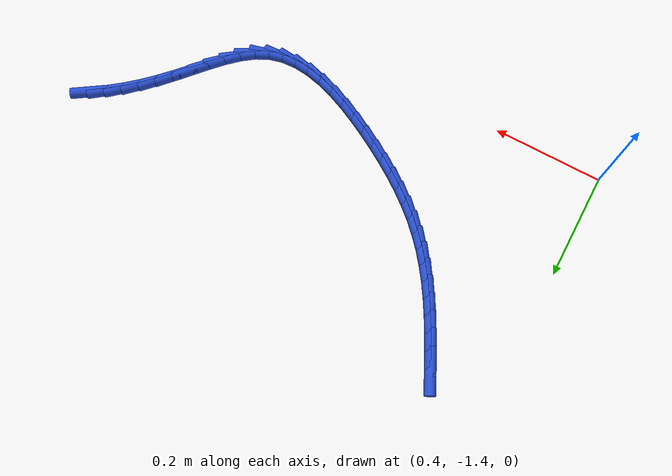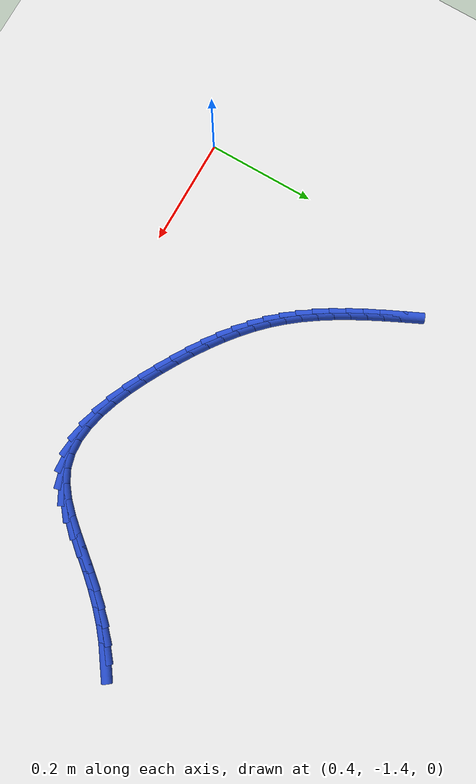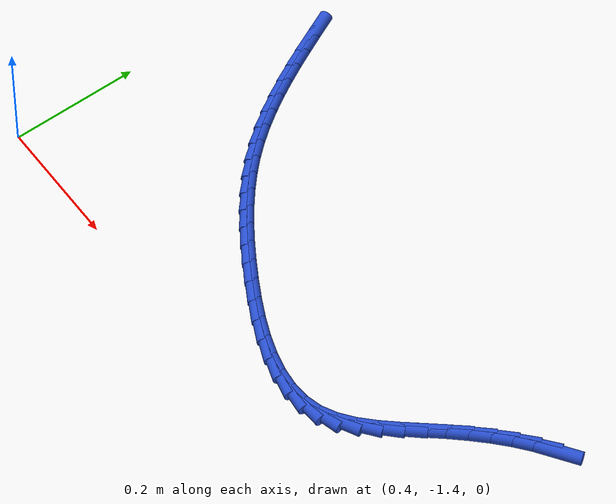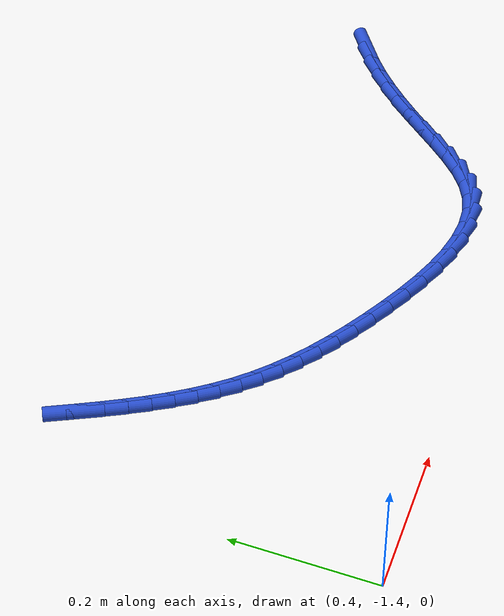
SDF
<sdf version="1.6">
 <world name="default">
  <model name="ground_plane">
   <static>1</static>
   <link name="link">
    <collision name="collision">
     <geometry><plane><normal>0 0 1</normal><size>100 100</size></plane></geometry>
     <surface><friction><ode><mu>100</mu><mu2>50</mu2></ode></friction></surface>
    </collision>
    <visual name="visual">
     <cast_shadows>0</cast_shadows>
     <geometry><plane><normal>0 0 1</normal><size>100 100</size></plane></geometry>
     <material>
      <script><uri>file://media/materials/scripts/gazebo.material</uri><name>Gazebo/WhiteGlow</name></script>
     </material>
    </visual>
   </link>
  </model>
  <model name="line">
   <link name="link_209">
    <pose>1.2861590189860541 -1.0997589710834181 0.01 0 1.57 0.6084185661829347</pose>
    <collision name="collision">
     <geometry><cylinder><radius>0.01</radius><length>0.08</length></cylinder></geometry>
    </collision>
    <visual name="visual">
     <material>
      <script><name>Gazebo/Blue</name><uri>file://media/materials/scripts/gazebo.material</uri></script>
     </material>
     <geometry><cylinder><radius>0.01</radius><length>0.08</length></cylinder></geometry>
    </visual>
   </link>
   <link name="link_210">
    <pose>1.2612996912087948 -1.1170751712493021 0.01 0 1.57 0.6839154844562785</pose>
    <collision name="collision">
     <geometry><cylinder><radius>0.01</radius><length>0.08</length></cylinder></geometry>
    </collision>
    <visual name="visual">
     <material>
      <script><name>Gazebo/Blue</name><uri>file://media/materials/scripts/gazebo.material</uri></script>
     </material>
     <geometry><cylinder><radius>0.01</radius><length>0.08</length></cylinder></geometry>
    </visual>
   </link>
   <link name="link_211">
    <pose>1.237512090963625 -1.136465822181961 0.01 0 1.57 0.7475414297380552</pose>
    <collision name="collision">
     <geometry><cylinder><radius>0.01</radius><length>0.08</length></cylinder></geometry>
    </collision>
    <visual name="visual">
     <material>
      <script><name>Gazebo/Blue</name><uri>file://media/materials/scripts/gazebo.material</uri></script>
     </material>
     <geometry><cylinder><radius>0.01</radius><length>0.08</length></cylinder></geometry>
    </visual>
   </link>
   <link name="link_212">
    <pose>1.214667768669167 -1.1576428436274608 0.01 0 1.57 0.7998434305124271</pose>
    <collision name="collision">
     <geometry><cylinder><radius>0.01</radius><length>0.08</length></cylinder></geometry>
    </collision>
    <visual name="visual">
     <material>
      <script><name>Gazebo/Blue</name><uri>file://media/materials/scripts/gazebo.material</uri></script>
     </material>
     <geometry><cylinder><radius>0.01</radius><length>0.08</length></cylinder></geometry>
    </visual>
   </link>
   <link name="link_213">
    <pose>1.1926382747440418 -1.180318155331868 0.01 0 1.57 0.8415513875856154</pose>
    <collision name="collision">
     <geometry><cylinder><radius>0.01</radius><length>0.08</length></cylinder></geometry>
    </collision>
    <visual name="visual">
     <material>
      <script><name>Gazebo/Blue</name><uri>file://media/materials/scripts/gazebo.material</uri></script>
     </material>
     <geometry><cylinder><radius>0.01</radius><length>0.08</length></cylinder></geometry>
    </visual>
   </link>
   <link name="link_214">
    <pose>1.1712951596068724 -1.2042036770412494 0.01 0 1.57 0.872230084746882</pose>
    <collision name="collision">
     <geometry><cylinder><radius>0.01</radius><length>0.08</length></cylinder></geometry>
    </collision>
    <visual name="visual">
     <material>
      <script><name>Gazebo/Blue</name><uri>file://media/materials/scripts/gazebo.material</uri></script>
     </material>
     <geometry><cylinder><radius>0.01</radius><length>0.08</length></cylinder></geometry>
    </visual>
   </link>
   <link name="link_215">
    <pose>1.1504953335620145 -1.2289700803911334 0.01 0 1.57 0.8778581682443698</pose>
    <collision name="collision">
     <geometry><cylinder><radius>0.01</radius><length>0.08</length></cylinder></geometry>
    </collision>
    <visual name="visual">
     <material>
      <script><name>Gazebo/Blue</name><uri>file://media/materials/scripts/gazebo.material</uri></script>
     </material>
     <geometry><cylinder><radius>0.01</radius><length>0.08</length></cylinder></geometry>
    </visual>
   </link>
   <link name="link_216">
    <pose>1.129909572385254 -1.2537636082134094 0.01 0 1.57 0.8478102952638523</pose>
    <collision name="collision">
     <geometry><cylinder><radius>0.01</radius><length>0.08</length></cylinder></geometry>
    </collision>
    <visual name="visual">
     <material>
      <script><name>Gazebo/Blue</name><uri>file://media/materials/scripts/gazebo.material</uri></script>
     </material>
     <geometry><cylinder><radius>0.01</radius><length>0.08</length></cylinder></geometry>
    </visual>
   </link>
   <link name="link_217">
    <pose>1.1090805337630742 -1.2773695342236382 0.01 0 1.57 0.7775416072455353</pose>
    <collision name="collision">
     <geometry><cylinder><radius>0.01</radius><length>0.08</length></cylinder></geometry>
    </collision>
    <visual name="visual">
     <material>
      <script><name>Gazebo/Blue</name><uri>file://media/materials/scripts/gazebo.material</uri></script>
     </material>
     <geometry><cylinder><radius>0.01</radius><length>0.08</length></cylinder></geometry>
    </visual>
   </link>
   <link name="link_218">
    <pose>1.0875483484255912 -1.2985660125088194 0.01 0 1.57 0.6586601776196622</pose>
    <collision name="collision">
     <geometry><cylinder><radius>0.01</radius><length>0.08</length></cylinder></geometry>
    </collision>
    <visual name="visual">
     <material>
      <script><name>Gazebo/Blue</name><uri>file://media/materials/scripts/gazebo.material</uri></script>
     </material>
     <geometry><cylinder><radius>0.01</radius><length>0.08</length></cylinder></geometry>
    </visual>
   </link>
   <link name="link_219">
    <pose>1.0648531471029192 -1.3161311971559517 0.01 0 1.57 0.4816758764515827</pose>
    <collision name="collision">
     <geometry><cylinder><radius>0.01</radius><length>0.08</length></cylinder></geometry>
    </collision>
    <visual name="visual">
     <material>
      <script><name>Gazebo/Blue</name><uri>file://media/materials/scripts/gazebo.material</uri></script>
     </material>
     <geometry><cylinder><radius>0.01</radius><length>0.08</length></cylinder></geometry>
    </visual>
   </link>
   <link name="link_220">
    <pose>1.0405350822664654 -1.328843290580633 0.01 0 1.57 0.2610140699693632</pose>
    <collision name="collision">
     <geometry><cylinder><radius>0.01</radius><length>0.08</length></cylinder></geometry>
    </collision>
    <visual name="visual">
     <material>
      <script><name>Gazebo/Blue</name><uri>file://media/materials/scripts/gazebo.material</uri></script>
     </material>
     <geometry><cylinder><radius>0.01</radius><length>0.08</length></cylinder></geometry>
    </visual>
   </link>
   <link name="link_221">
    <pose>1.0143008303751369 -1.3358506604308986 0.01 0 1.57 0.06137285924244758</pose>
    <collision name="collision">
     <geometry><cylinder><radius>0.01</radius><length>0.08</length></cylinder></geometry>
    </collision>
    <visual name="visual">
     <material>
      <script><name>Gazebo/Blue</name><uri>file://media/materials/scripts/gazebo.material</uri></script>
     </material>
     <geometry><cylinder><radius>0.01</radius><length>0.08</length></cylinder></geometry>
    </visual>
   </link>
   <link name="link_222">
    <pose>0.9864247827164533 -1.3375636444447818 0.01 0 1.57 -0.09933247410590293</pose>
    <collision name="collision">
     <geometry><cylinder><radius>0.01</radius><length>0.08</length></cylinder></geometry>
    </collision>
    <visual name="visual">
     <material>
      <script><name>Gazebo/Blue</name><uri>file://media/materials/scripts/gazebo.material</uri></script>
     </material>
     <geometry><cylinder><radius>0.01</radius><length>0.08</length></cylinder></geometry>
    </visual>
   </link>
   <link name="link_223">
    <pose>0.9573022065046828 -1.3346612747760176 0.01 0 1.57 -0.22431570646692234</pose>
    <collision name="collision">
     <geometry><cylinder><radius>0.01</radius><length>0.08</length></cylinder></geometry>
    </collision>
    <visual name="visual">
     <material>
      <script><name>Gazebo/Blue</name><uri>file://media/materials/scripts/gazebo.material</uri></script>
     </material>
     <geometry><cylinder><radius>0.01</radius><length>0.08</length></cylinder></geometry>
    </visual>
   </link>
   <link name="link_224">
    <pose>0.9273283689540956 -1.3278225835783442 0.01 0 1.57 -0.32035104560979866</pose>
    <collision name="collision">
     <geometry><cylinder><radius>0.01</radius><length>0.08</length></cylinder></geometry>
    </collision>
    <visual name="visual">
     <material>
      <script><name>Gazebo/Blue</name><uri>file://media/materials/scripts/gazebo.material</uri></script>
     </material>
     <geometry><cylinder><radius>0.01</radius><length>0.08</length></cylinder></geometry>
    </visual>
   </link>
   <link name="link_225">
    <pose>0.8968985372789612 -1.3177266030054975 0.01 0 1.57 -0.39394794519641113</pose>
    <collision name="collision">
     <geometry><cylinder><radius>0.01</radius><length>0.08</length></cylinder></geometry>
    </collision>
    <visual name="visual">
     <material>
      <script><name>Gazebo/Blue</name><uri>file://media/materials/scripts/gazebo.material</uri></script>
     </material>
     <geometry><cylinder><radius>0.01</radius><length>0.08</length></cylinder></geometry>
    </visual>
   </link>
   <link name="link_226">
    <pose>0.8664079786935477 -1.305052365211214 0.01 0 1.57 -0.4501732849319723</pose>
    <collision name="collision">
     <geometry><cylinder><radius>0.01</radius><length>0.08</length></cylinder></geometry>
    </collision>
    <visual name="visual">
     <material>
      <script><name>Gazebo/Blue</name><uri>file://media/materials/scripts/gazebo.material</uri></script>
     </material>
     <geometry><cylinder><radius>0.01</radius><length>0.08</length></cylinder></geometry>
    </visual>
   </link>
   <link name="link_227">
    <pose>0.8362519604121265 -1.2904789023492313 0.01 0 1.57 -0.49259082175678826</pose>
    <collision name="collision">
     <geometry><cylinder><radius>0.01</radius><length>0.08</length></cylinder></geometry>
    </collision>
    <visual name="visual">
     <material>
      <script><name>Gazebo/Blue</name><uri>file://media/materials/scripts/gazebo.material</uri></script>
     </material>
     <geometry><cylinder><radius>0.01</radius><length>0.08</length></cylinder></geometry>
    </visual>
   </link>
   <link name="link_228">
    <pose>0.8068257496489665 -1.2746852465732863 0.01 0 1.57 -0.5239088823773586</pose>
    <collision name="collision">
     <geometry><cylinder><radius>0.01</radius><length>0.08</length></cylinder></geometry>
    </collision>
    <visual name="visual">
     <material>
      <script><name>Gazebo/Blue</name><uri>file://media/materials/scripts/gazebo.material</uri></script>
     </material>
     <geometry><cylinder><radius>0.01</radius><length>0.08</length></cylinder></geometry>
    </visual>
   </link>
   <link name="link_229">
    <pose>0.7785137321054276 -1.2583275871951423 0.01 0 1.57 -0.5533129011289187</pose>
    <collision name="collision">
     <geometry><cylinder><radius>0.01</radius><length>0.08</length></cylinder></geometry>
    </collision>
    <visual name="visual">
     <material>
      <script><name>Gazebo/Blue</name><uri>file://media/materials/scripts/gazebo.material</uri></script>
     </material>
     <geometry><cylinder><radius>0.01</radius><length>0.08</length></cylinder></geometry>
    </visual>
   </link>
   <link name="link_230">
    <pose>0.7515001965060525 -1.2416420631476548 0.01 0 1.57 -0.588227914850077</pose>
    <collision name="collision">
     <geometry><cylinder><radius>0.01</radius><length>0.08</length></cylinder></geometry>
    </collision>
    <visual name="visual">
     <material>
      <script><name>Gazebo/Blue</name><uri>file://media/materials/scripts/gazebo.material</uri></script>
     </material>
     <geometry><cylinder><radius>0.01</radius><length>0.08</length></cylinder></geometry>
    </visual>
   </link>
   <link name="link_231">
    <pose>0.725793783588296 -1.2244960871355062 0.01 0 1.57 -0.6290253532337019</pose>
    <collision name="collision">
     <geometry><cylinder><radius>0.01</radius><length>0.08</length></cylinder></geometry>
    </collision>
    <visual name="visual">
     <material>
      <script><name>Gazebo/Blue</name><uri>file://media/materials/scripts/gazebo.material</uri></script>
     </material>
     <geometry><cylinder><radius>0.01</radius><length>0.08</length></cylinder></geometry>
    </visual>
   </link>
   <link name="link_232">
    <pose>0.7013971684222833 -1.2067445485316313 0.01 0 1.57 -0.6756620745342388</pose>
    <collision name="collision">
     <geometry><cylinder><radius>0.01</radius><length>0.08</length></cylinder></geometry>
    </collision>
    <visual name="visual">
     <material>
      <script><name>Gazebo/Blue</name><uri>file://media/materials/scripts/gazebo.material</uri></script>
     </material>
     <geometry><cylinder><radius>0.01</radius><length>0.08</length></cylinder></geometry>
    </visual>
   </link>
   <link name="link_233">
    <pose>0.6783130260781397 -1.1882423367089654 0.01 0 1.57 -0.7278670606033926</pose>
    <collision name="collision">
     <geometry><cylinder><radius>0.01</radius><length>0.08</length></cylinder></geometry>
    </collision>
    <visual name="visual">
     <material>
      <script><name>Gazebo/Blue</name><uri>file://media/materials/scripts/gazebo.material</uri></script>
     </material>
     <geometry><cylinder><radius>0.01</radius><length>0.08</length></cylinder></geometry>
    </visual>
   </link>
   <link name="link_234">
    <pose>0.6565440316259896 -1.168844341040443 0.01 0 1.57 -0.7850978129521808</pose>
    <collision name="collision">
     <geometry><cylinder><radius>0.01</radius><length>0.08</length></cylinder></geometry>
    </collision>
    <visual name="visual">
     <material>
      <script><name>Gazebo/Blue</name><uri>file://media/materials/scripts/gazebo.material</uri></script>
     </material>
     <geometry><cylinder><radius>0.01</radius><length>0.08</length></cylinder></geometry>
    </visual>
   </link>
   <link name="link_235">
    <pose>0.63609286013596 -1.1484054508990007 0.01 0 1.57 -0.8464021502876724</pose>
    <collision name="collision">
     <geometry><cylinder><radius>0.01</radius><length>0.08</length></cylinder></geometry>
    </collision>
    <visual name="visual">
     <material>
      <script><name>Gazebo/Blue</name><uri>file://media/materials/scripts/gazebo.material</uri></script>
     </material>
     <geometry><cylinder><radius>0.01</radius><length>0.08</length></cylinder></geometry>
    </visual>
   </link>
   <link name="link_236">
    <pose>0.6169604388792941 -1.1267837787944184 0.01 0 1.57 -0.9064741468381452</pose>
    <collision name="collision">
     <geometry><cylinder><radius>0.01</radius><length>0.08</length></cylinder></geometry>
    </collision>
    <visual name="visual">
     <material>
      <script><name>Gazebo/Blue</name><uri>file://media/materials/scripts/gazebo.material</uri></script>
     </material>
     <geometry><cylinder><radius>0.01</radius><length>0.08</length></cylinder></geometry>
    </visual>
   </link>
   <link name="link_237">
    <pose>0.5990840800848453 -1.1039547504978735 0.01 0 1.57 -0.9593948665781205</pose>
    <collision name="collision">
     <geometry><cylinder><radius>0.01</radius><length>0.08</length></cylinder></geometry>
    </collision>
    <visual name="visual">
     <material>
      <script><name>Gazebo/Blue</name><uri>file://media/materials/scripts/gazebo.material</uri></script>
     </material>
     <geometry><cylinder><radius>0.01</radius><length>0.08</length></cylinder></geometry>
    </visual>
   </link>
   <link name="link_238">
    <pose>0.5823208793333287 -1.0800417202618875 0.01 0 1.57 -1.0047721831946286</pose>
    <collision name="collision">
     <geometry><cylinder><radius>0.01</radius><length>0.08</length></cylinder></geometry>
    </collision>
    <visual name="visual">
     <material>
      <script><name>Gazebo/Blue</name><uri>file://media/materials/scripts/gazebo.material</uri></script>
     </material>
     <geometry><cylinder><radius>0.01</radius><length>0.08</length></cylinder></geometry>
    </visual>
   </link>
   <link name="link_239">
    <pose>0.5665228080199873 -1.0551774919107697 0.01 0 1.57 -1.0427381296703198</pose>
    <collision name="collision">
     <geometry><cylinder><radius>0.01</radius><length>0.08</length></cylinder></geometry>
    </collision>
    <visual name="visual">
     <material>
      <script><name>Gazebo/Blue</name><uri>file://media/materials/scripts/gazebo.material</uri></script>
     </material>
     <geometry><cylinder><radius>0.01</radius><length>0.08</length></cylinder></geometry>
    </visual>
   </link>
   <link name="link_240">
    <pose>0.5515418375400643 -1.0294948692688273 0.01 0 1.57 -1.073520240315188</pose>
    <collision name="collision">
     <geometry><cylinder><radius>0.01</radius><length>0.08</length></cylinder></geometry>
    </collision>
    <visual name="visual">
     <material>
      <script><name>Gazebo/Blue</name><uri>file://media/materials/scripts/gazebo.material</uri></script>
     </material>
     <geometry><cylinder><radius>0.01</radius><length>0.08</length></cylinder></geometry>
    </visual>
   </link>
   <link name="link_241">
    <pose>0.5372299392888021 -1.003126656160368 0.01 0 1.57 -1.0973799671537456</pose>
    <collision name="collision">
     <geometry><cylinder><radius>0.01</radius><length>0.08</length></cylinder></geometry>
    </collision>
    <visual name="visual">
     <material>
      <script><name>Gazebo/Blue</name><uri>file://media/materials/scripts/gazebo.material</uri></script>
     </material>
     <geometry><cylinder><radius>0.01</radius><length>0.08</length></cylinder></geometry>
    </visual>
   </link>
   <link name="link_242">
    <pose>0.5234390846614444 -0.9762056564097008 0.01 0 1.57 -1.114568622753365</pose>
    <collision name="collision">
     <geometry><cylinder><radius>0.01</radius><length>0.08</length></cylinder></geometry>
    </collision>
    <visual name="visual">
     <material>
      <script><name>Gazebo/Blue</name><uri>file://media/materials/scripts/gazebo.material</uri></script>
     </material>
     <geometry><cylinder><radius>0.01</radius><length>0.08</length></cylinder></geometry>
    </visual>
   </link>
   <link name="link_243">
    <pose>0.5100212450532334 -0.9488646738411323 0.01 0 1.57 -1.125298223966029</pose>
    <collision name="collision">
     <geometry><cylinder><radius>0.01</radius><length>0.08</length></cylinder></geometry>
    </collision>
    <visual name="visual">
     <material>
      <script><name>Gazebo/Blue</name><uri>file://media/materials/scripts/gazebo.material</uri></script>
     </material>
     <geometry><cylinder><radius>0.01</radius><length>0.08</length></cylinder></geometry>
    </visual>
   </link>
  </model>
 </world>
</sdf>
